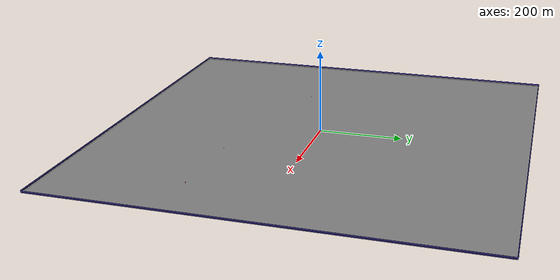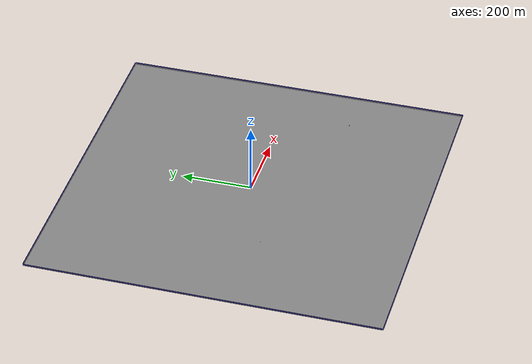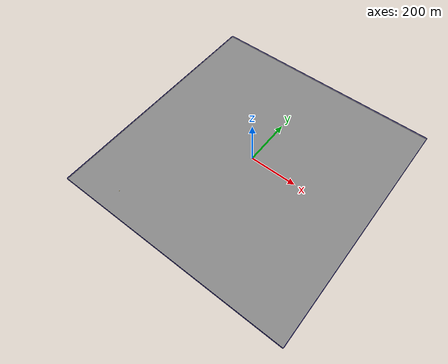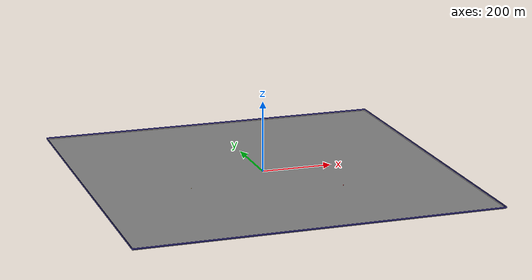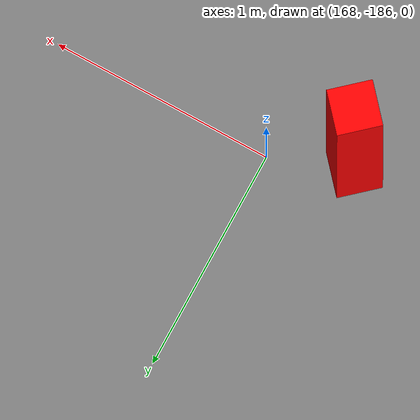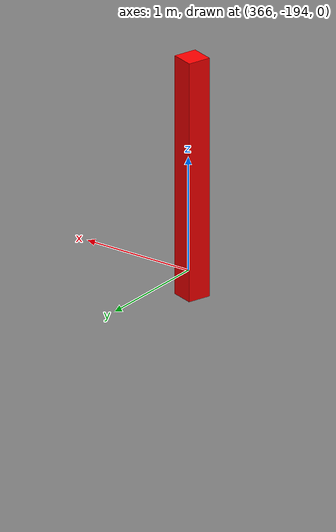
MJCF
<mujoco model="unnamed_model">
  <default>
    <default class="/" />
    <default class="border/" />
    <default class="border_1/" />
    <default class="border_2/" />
    <default class="border_3/" />
    <default class="agentplaceholder/" />
    <default class="placeholder_box/" />
    <default class="tree0/" />
    <default class="tree1/" />
    <default class="stone/" />
    <default class="stone_1/" />
  </default>
  <worldbody>
    <body name="border/">
      <body name="border/border" pos="0 501 2">
        <geom name="border/border_geom" class="border/" type="box" size="500 1 2" rgba="0.035000000000000003 0.016 0.28999999999999998 1" />
      </body>
    </body>
    <body name="border_1/">
      <body name="border_1/border" pos="0 -501 2">
        <geom name="border_1/border_geom" class="border_1/" type="box" size="500 1 2" rgba="0.035000000000000003 0.016 0.28999999999999998 1" />
      </body>
    </body>
    <body name="border_2/">
      <body name="border_2/border" pos="501 0 2">
        <geom name="border_2/border_geom" class="border_2/" type="box" size="1 500 2" rgba="0.035000000000000003 0.016 0.28999999999999998 1" />
      </body>
    </body>
    <body name="border_3/">
      <body name="border_3/border" pos="-501 0 2">
        <geom name="border_3/border_geom" class="border_3/" type="box" size="1 500 2" rgba="0.035000000000000003 0.016 0.28999999999999998 1" />
      </body>
    </body>
    <body euler="0 0 21.518688120670362" name="agentplaceholder/">
      <joint name="agentplaceholder/boxagent_freeJoint/" class="/" type="free" />
      <body name="agentplaceholder/agentplaceholder" pos="-250 0 3" euler="0 0 0">
        <geom name="agentplaceholder/boxagent_geom" class="agentplaceholder/" type="box" size="0.5 0.5 0.5" rgba="0.94899999999999995 0.74509999999999998 0.1333 1" euler="0 0 0" />
      </body>
    </body>
    <body name="placeholder_box/">
      <body name="placeholder_box/placeholder_box" pos="-305.01839999999999 -418.36579999999998 0.5" euler="0 0 83.711851172293109">
        <geom name="placeholder_box/box_geom" class="placeholder_box/" type="box" size="0.5 0.5 0.5" rgba="0.94899999999999995 0.74509999999999998 0.1333 1" euler="0 0 0" />
      </body>
    </body>
    <body name="tree0/">
      <body name="tree0/tree0" pos="218.39519999999999 -127.8236 0.10000000000000001" euler="0 0 -107.39261652757966">
        <geom name="tree0/tree_geom" class="tree0/" type="box" size="0.10000000000000001 0.10000000000000001 2" rgba="1 0 0 1" />
      </body>
    </body>
    <body name="tree1/">
      <body name="tree1/tree1" pos="167.64805000000001 -186.13139999999999 0.10000000000000001" euler="0 0 131.46395629024585">
        <geom name="tree1/tree_geom" class="tree1/" type="box" size="0.10000000000000001 0.10000000000000001 2" rgba="1 0 0 1" />
      </body>
    </body>
    <body name="stone/">
      <body name="stone/stone" pos="234.55420000000001 -190.80690000000004 0.10000000000000001" euler="0 0 -74.83402241947249">
        <geom name="stone/stone_geom" class="stone/" type="box" size="0.10000000000000001 0.10000000000000001 2" rgba="1 0 0 1" />
      </body>
    </body>
    <body name="stone_1/">
      <body name="stone_1/stone" pos="365.69960000000003 -193.64070000000004 0.10000000000000001" euler="0 0 -18.567776988754673">
        <geom name="stone_1/stone_geom" class="stone_1/" type="box" size="0.10000000000000001 0.10000000000000001 2" rgba="1 0 0 1" />
      </body>
    </body>
    <geom name="base_plane" class="/" type="plane" size="500 500 0.10000000000000001" />
  </worldbody>
</mujoco>
